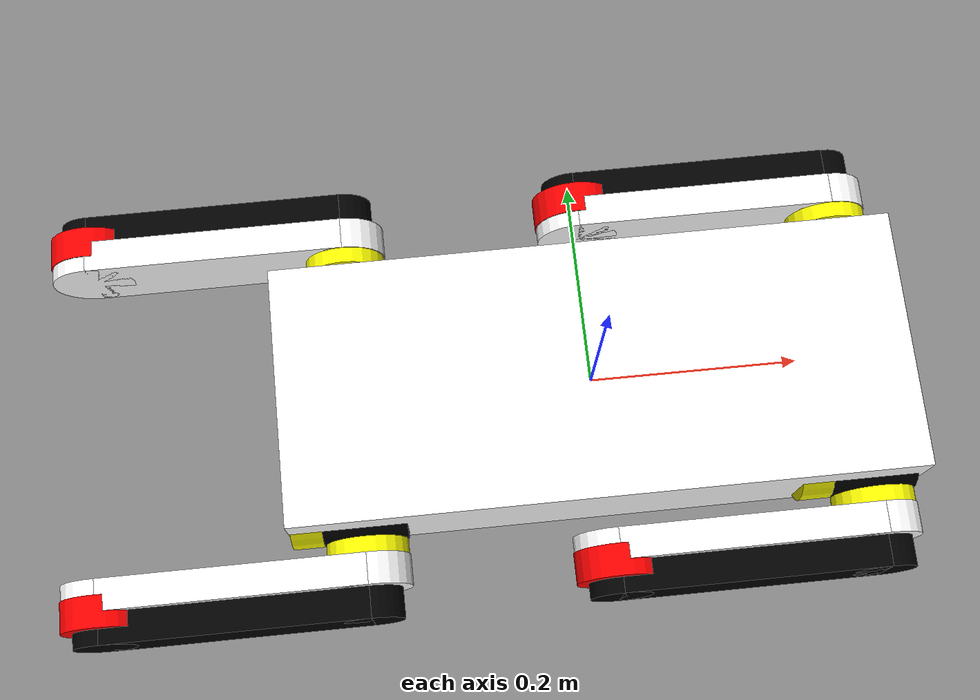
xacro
<?xml version="1.0"?>
<robot xmlns:xacro = "http:://www.ros.org/wiki/xacro" name="dtb_quadruped">

	<xacro:include filename="$(find dtb_quadruped_description)/robots/dtb_quadruped.gazebo.xacro"/>

	<!--Xacro Properties-->

	<xacro:property name="body_box_length" value="0.6"/>
	<xacro:property name="body_box_width" value="0.25"/>
	<xacro:property name="body_box_height" value="0.1"/>
	<xacro:property name="M_PI" value="3.1415926"/>
	<xacro:property name="motor_effort" value="50"/>
	<xacro:property name="motor_velocity" value="${M_PI}"/>

	<!-- Base Description-->

	<link name="base_footprint"/>

	<joint name="base_joint" type="fixed">
		<parent link="base_footprint"/>
		<child link="base_link"/>
		<origin xyz="0 0 0"/>
		<axis xyz="0 0 0"/>
	</joint>

	<link name="base_link">
		<visual>
			<origin xyz = "0 0 0" rpy = "0 0 0"/>
			<geometry>
				<box size = "${body_box_length} ${body_box_width} ${body_box_height}"/>
			</geometry>
			<material name = "body_color"/>
		</visual>
		<collision>
			<origin xyz = "0 0 0" rpy = "0 0 0"/>
			<geometry>
				<box size = "${body_box_length} ${body_box_width} ${body_box_height}"/>
			</geometry>
		</collision>
		<inertial>
			<origin xyz = "0 0 0" rpy = "0 0 0"/>
			<mass value = "4.0"/>
			<inertia
    	    	ixx="0.002201" ixy="0.0" ixz="0.0"
    	    	iyy="0.008167" iyz="0.0"
    	    	izz="0.009042"/>
		</inertial>
	</link>

	<!-- Turn Motor -->

	<xacro:macro name="t_motor_macro" params="t_motor_num x_pos y_pos">
		<link name="t_motor_${t_motor_num}">
			<visual>
				<origin xyz = "0 0 0" rpy = "0 0 0"/>
				<geometry>
					<cylinder length="0.03" radius="0.04"/>
				</geometry>
				<material name = "t_motor_color"/>
			</visual>
			<collision>
				<origin xyz = "0 0 0" rpy = "0 0 0"/>
				<geometry>
					<cylinder length="0.03" radius="0.04"/>
				</geometry>
			</collision>
			<inertial>
				<origin xyz = "0 0 0" rpy = "0 0 0"/>
				<mass value = "0.5"/>
				<inertia
    	    			ixx="0.0003" ixy="0.0" ixz="0.0"
    	    			iyy="0.0003" iyz="0.0"
    	    			izz="0.0004"/>
			</inertial>
		</link>
		<joint name="t_motor_${t_motor_num}_joint" type="revolute">
			<parent link="base_link"/>
			<child link="t_motor_${t_motor_num}"/>
			<origin xyz="${x_pos} ${((body_box_width/2)-0.03)*y_pos} ${(-body_box_height/2)+0.04}" rpy="0 ${M_PI/2} 0"/>
			<axis xyz="0 0 1"/>
			<limit effort="${motor_effort}" lower="${-(M_PI/10)}" upper="${(M_PI/10)}" velocity="${motor_velocity}"/>
		</joint>
	</xacro:macro>
	<xacro:t_motor_macro t_motor_num="1" x_pos="${(body_box_length/2)-0.1}" y_pos="1"/>
	<xacro:t_motor_macro t_motor_num="2" x_pos="${(body_box_length/2)-0.1}" y_pos="-1"/>
	<xacro:t_motor_macro t_motor_num="3" x_pos="${-(body_box_length/2)+0.016}" y_pos="1"/>
	<xacro:t_motor_macro t_motor_num="4" x_pos="${-(body_box_length/2)+0.016}" y_pos="-1"/>

	<!-- Turn to Loco Motor Joint -->

	<xacro:macro name="t_l_link_macro" params="t_l_link_num">
		<link name="t_l_link_${t_l_link_num}">
			<visual>
				<origin xyz = "0 0 0" rpy = "0 0 0"/>
				<geometry>
					<cylinder length="0.08" radius="0.04"/>
				</geometry>
				<material name = "black"/>
			</visual>
			<collision>
				<origin xyz = "0 0 0" rpy = "0 0 0"/>
				<geometry>
					<cylinder length="0.08" radius="0.04"/>
				</geometry>
			</collision>
			<inertial>
				<origin xyz = "0 0 0" rpy = "0 0 0"/>
				<mass value = "0.3"/>
				<inertia
    	    			ixx="0.00028" ixy="0.0" ixz="0.0"
    	    			iyy="0.00028" iyz="0.0"
    	    			izz="0.00024"/>
			</inertial>
		</link>
		<joint name="t_l_link_${t_l_link_num}_joint" type="fixed">
			<parent link="t_motor_${t_l_link_num}"/>
			<child link="t_l_link_${t_l_link_num}"/>
			<origin xyz="0 0 0.055" rpy="0 0 0"/>
			<axis xyz="0 0 1"/>
		</joint>
	</xacro:macro>
	<xacro:t_l_link_macro t_l_link_num="1"/>
	<xacro:t_l_link_macro t_l_link_num="2"/>
	<xacro:t_l_link_macro t_l_link_num="3"/>
	<xacro:t_l_link_macro t_l_link_num="4"/>

	<!-- Loco Motor -->

	<xacro:macro name="l_motor_macro" params="l_motor_num pose">
		<link name="l_motor_${l_motor_num}">
			<visual>
				<origin xyz = "0 0 0" rpy = "0 0 0"/>
				<geometry>
					<cylinder length="0.03" radius="0.039"/>
				</geometry>
				<material name = "l_motor_color"/>
			</visual>
			<collision>
				<origin xyz = "0 0 0" rpy = "0 0 0"/>
				<geometry>
					<cylinder length="0.03" radius="0.039"/>
				</geometry>
			</collision>
			<inertial>
				<origin xyz = "0 0 0" rpy = "0 0 0"/>
				<mass value = "0.5"/>
				<inertia
    	    			ixx="0.0003" ixy="0.0" ixz="0.0"
    	    			iyy="0.0003" iyz="0.0"
    	    			izz="0.0004"/>
			</inertial>
		</link>
		<joint name="l_motor_${l_motor_num}_joint" type="revolute">
			<parent link="t_l_link_${l_motor_num}"/>
			<child link="l_motor_${l_motor_num}"/>
			<origin xyz="0 ${(0.055)*pose} 0" rpy="${(-M_PI/2)*pose} 0 0"/>
			<axis xyz="0 0 1"/>
			<limit effort="${motor_effort}" lower="${(-M_PI/2)+((-M_PI/2)*pose)}" upper="${(M_PI/2)-((M_PI/2)*pose)}" velocity="${motor_velocity}"/>
		</joint>
	</xacro:macro>
	<xacro:l_motor_macro l_motor_num="1" pose="1"/>
	<xacro:l_motor_macro l_motor_num="2" pose="-1"/>
	<xacro:l_motor_macro l_motor_num="3" pose="1"/>
	<xacro:l_motor_macro l_motor_num="4" pose="-1"/>

	<!-- Thigh Link -->

	<xacro:macro name="thigh_link_macro" params="thigh_num pose">
		<link name="thigh_link_${thigh_num}">
			<visual>
				<origin xyz = "0 0 0" rpy = "0 0 0"/>
				<geometry>
					<box size="0.25 0.08 0.03"/>
				</geometry>
				<material name = "thigh_color"/>
			</visual>
			<collision>
				<origin xyz = "0 0 0" rpy = "0 0 0"/>
				<geometry>
					<box size="0.25 0.08 0.03"/>
				</geometry>
			</collision>
			<inertial>
				<origin xyz = "0 0 0" rpy = "0 0 0"/>
				<mass value = "0.5"/>
				<inertia
    	    			ixx="0.0002825" ixy="0.0" ixz="0.0"
    	    			iyy="0.002585" iyz="0.0"
    	    			izz="0.002722"/>
			</inertial>
		</link>
		<joint name="l_thigh_${thigh_num}_joint" type="fixed">
			<parent link="l_motor_${thigh_num}"/>
			<child link="thigh_link_${thigh_num}"/>
			<origin xyz="0 ${0.125*pose} 0.015" rpy="0 0 ${(M_PI/2)*pose}"/>
			<axis xyz="0 0 1"/>
		</joint>
	</xacro:macro>
	<xacro:thigh_link_macro thigh_num="1" pose="1"/>
	<xacro:thigh_link_macro thigh_num="2" pose="-1"/>
	<xacro:thigh_link_macro thigh_num="3" pose="1"/>
	<xacro:thigh_link_macro thigh_num="4" pose="-1"/>

	<xacro:macro name="thigh_semicirc_macro" params="thigh_num up_down">
		<link name="thigh_semicirc_${thigh_num}_${up_down}">
			<visual>
				<origin xyz = "0 0 0" rpy = "0 0 0"/>
				<geometry>
					<cylinder length="0.03" radius="0.04"/>
				</geometry>
				<material name = "thigh_color"/>
			</visual>
		</link>
		<joint name="thigh_semicirc_${thigh_num}_${up_down}_joint" type="fixed">
			<parent link="thigh_link_${thigh_num}"/>
			<child link="thigh_semicirc_${thigh_num}_${up_down}"/>
			<origin xyz="${up_down*0.125} 0 0" rpy="0 0 0"/>
			<axis xyz="0 0 1"/>
		</joint>
	</xacro:macro>
	<xacro:thigh_semicirc_macro thigh_num="1" up_down="-1"/>
	<xacro:thigh_semicirc_macro thigh_num="1" up_down="1"/>
	<xacro:thigh_semicirc_macro thigh_num="2" up_down="-1"/>
	<xacro:thigh_semicirc_macro thigh_num="2" up_down="1"/>
	<xacro:thigh_semicirc_macro thigh_num="3" up_down="-1"/>
	<xacro:thigh_semicirc_macro thigh_num="3" up_down="1"/>
	<xacro:thigh_semicirc_macro thigh_num="4" up_down="-1"/>
	<xacro:thigh_semicirc_macro thigh_num="4" up_down="1"/>

	<!-- Height Motor -->

	<xacro:macro name="h_motor_macro" params="h_motor_num pose">
		<link name="h_motor_${h_motor_num}">
			<visual>
				<origin xyz = "0 0 0" rpy = "0 0 0"/>
				<geometry>
					<cylinder length="0.03" radius="0.041"/>
				</geometry>
				<material name = "h_motor_color"/>
			</visual>
			<collision>
				<origin xyz = "0 0 0" rpy = "0 0 0"/>
				<geometry>
					<cylinder length="0.03" radius="0.041"/>
				</geometry>
			</collision>
			<inertial>
				<origin xyz = "0 0 0" rpy = "0 0 0"/>
				<mass value = "0.5"/>
				<inertia
    	    			ixx="0.0003" ixy="0.0" ixz="0.0"
    	    			iyy="0.0003" iyz="0.0"
    	    			izz="0.0004"/>
			</inertial>
		</link>
		<joint name="h_motor_${h_motor_num}_joint" type="revolute">
			<parent link="thigh_link_${h_motor_num}"/>
			<child link="h_motor_${h_motor_num}"/>
			<origin xyz="0.125 0 0.015" rpy="0 0 0"/>
			<axis xyz="0 0 1"/>
			<limit effort="${motor_effort}" lower="${0 + (-M_PI*pose)}" upper="${M_PI-(pose*M_PI)}" velocity="${motor_velocity}"/>
		</joint>
	</xacro:macro>
	<xacro:h_motor_macro h_motor_num="1" pose="0"/>
	<xacro:h_motor_macro h_motor_num="2" pose="1"/>
	<xacro:h_motor_macro h_motor_num="3" pose="0"/>
	<xacro:h_motor_macro h_motor_num="4" pose="1"/>

	<!-- Calf Link -->

	<xacro:macro name="calf_link_macro" params="calf_num">
		<link name="calf_link_${calf_num}">
			<visual>
				<origin xyz = "0 0 0" rpy = "0 0 0"/>
				<geometry>
					<box size="0.25 0.06 0.03"/>
				</geometry>
				<material name = "calf_color"/>
			</visual>
			<collision>
				<origin xyz = "0 0 0" rpy = "0 0 0"/>
				<geometry>
					<box size="0.25 0.06 0.03"/>
				</geometry>
			</collision>
			<inertial>
				<origin xyz = "0 0 0" rpy = "0 0 0"/>
				<mass value = "0.5"/>
				<inertia
    	    			ixx="0.0002825" ixy="0.0" ixz="0.0"
    	    			iyy="0.002585" iyz="0.0"
    	    			izz="0.002722"/>
			</inertial>
		</link>
		<joint name="h_calf_${calf_num}_joint" type="fixed">
			<parent link="h_motor_${calf_num}"/>
			<child link="calf_link_${calf_num}"/>
			<origin xyz="-0.125 0 0.015" rpy="0 0 0"/>
			<axis xyz="0 0 1"/>
		</joint>
	</xacro:macro>
	<xacro:calf_link_macro calf_num="1"/>
	<xacro:calf_link_macro calf_num="2"/>
	<xacro:calf_link_macro calf_num="3"/>
	<xacro:calf_link_macro calf_num="4"/>

	<xacro:macro name="calf_semicirc_macro" params="calf_num up_down">
		<link name="calf_semicirc_${calf_num}_${up_down}">
			<visual>
				<origin xyz = "0 0 0" rpy = "0 0 0"/>
				<geometry>
					<cylinder length="0.03" radius="0.03"/>
				</geometry>
				<material name = "calf_color"/>
			</visual>
			<collision>
				<origin xyz = "0 0 0" rpy = "0 0 0"/>
				<geometry>
					<cylinder length="0.03" radius="0.03"/>
				</geometry>
			</collision>
			<inertial>
				<origin xyz = "0 0 0" rpy = "0 0 0"/>
				<mass value = "0.1"/>
				<inertia
    	    			ixx="0.0000475" ixy="0.0" ixz="0.0"
    	    			iyy="0.0000475" iyz="0.0"
    	    			izz="0.00008"/>
			</inertial>
		</link>
		<joint name="calf_semicirc_${calf_num}_${up_down}_joint" type="fixed">
			<parent link="calf_link_${calf_num}"/>
			<child link="calf_semicirc_${calf_num}_${up_down}"/>
			<origin xyz="${up_down*0.125} 0 0" rpy="0 0 0"/>
			<axis xyz="0 0 1"/>
		</joint>
	</xacro:macro>
	<xacro:calf_semicirc_macro calf_num="1" up_down="-1"/>
	<xacro:calf_semicirc_macro calf_num="1" up_down="1"/>
	<xacro:calf_semicirc_macro calf_num="2" up_down="-1"/>
	<xacro:calf_semicirc_macro calf_num="2" up_down="1"/>
	<xacro:calf_semicirc_macro calf_num="3" up_down="-1"/>
	<xacro:calf_semicirc_macro calf_num="3" up_down="1"/>
	<xacro:calf_semicirc_macro calf_num="4" up_down="-1"/>
	<xacro:calf_semicirc_macro calf_num="4" up_down="1"/>

	<!-- Hardware Transmission -->
	<xacro:macro name="transmission_macro" params="link_name">
		<transmission name="${link_name}_transmission">
			<type>transmission_interface/SimpleTransmission</type>
			<joint name="${link_name}_joint">
				<hardwareInterface>hardware_interface/EffortJointInterface</hardwareInterface>
			</joint>
			<actuator name="${link_name}_actuator">
				<hardwareInterface>hardware_interface/EffortJointInterface</hardwareInterface>
				<mechanicalReduction>1</mechanicalReduction>
			</actuator>
		</transmission>
	</xacro:macro>
	<xacro:transmission_macro link_name="t_motor_1"/>
	<xacro:transmission_macro link_name="t_motor_2"/>
	<xacro:transmission_macro link_name="t_motor_3"/>
	<xacro:transmission_macro link_name="t_motor_4"/>
	<xacro:transmission_macro link_name="l_motor_1"/>
	<xacro:transmission_macro link_name="l_motor_2"/>
	<xacro:transmission_macro link_name="l_motor_3"/>
	<xacro:transmission_macro link_name="l_motor_4"/>
	<xacro:transmission_macro link_name="h_motor_1"/>
	<xacro:transmission_macro link_name="h_motor_2"/>
	<xacro:transmission_macro link_name="h_motor_3"/>
	<xacro:transmission_macro link_name="h_motor_4"/>

	<!-- Rviz Colors -->

	<material name = "body_color">
		<color rgba="1 1 1 1"/>
	</material>
	<material name = "black">
		<color rgba="0 0 0 1"/>
	</material>
	<material name = "t_motor_color">
		<color rgba="1 1 0 1"/>
	</material>
	<material name = "l_motor_color">
		<color rgba="1 1 0 1"/>
	</material>
	<material name = "h_motor_color">
		<color rgba="1 0 0 1"/>
	</material>
	<material name = "thigh_color">
		<color rgba="1 1 1 1"/>
	</material>
	<material name = "calf_color">
		<color rgba="0 0 0 1"/>
	</material>

</robot>
